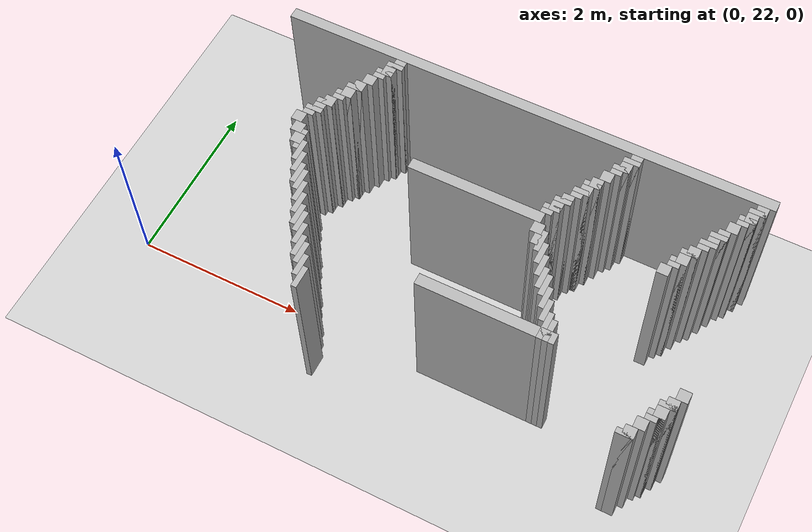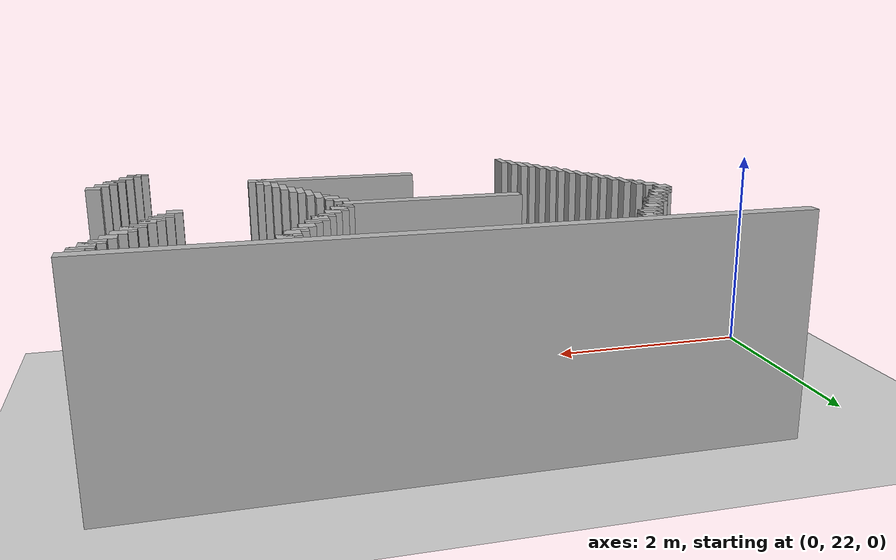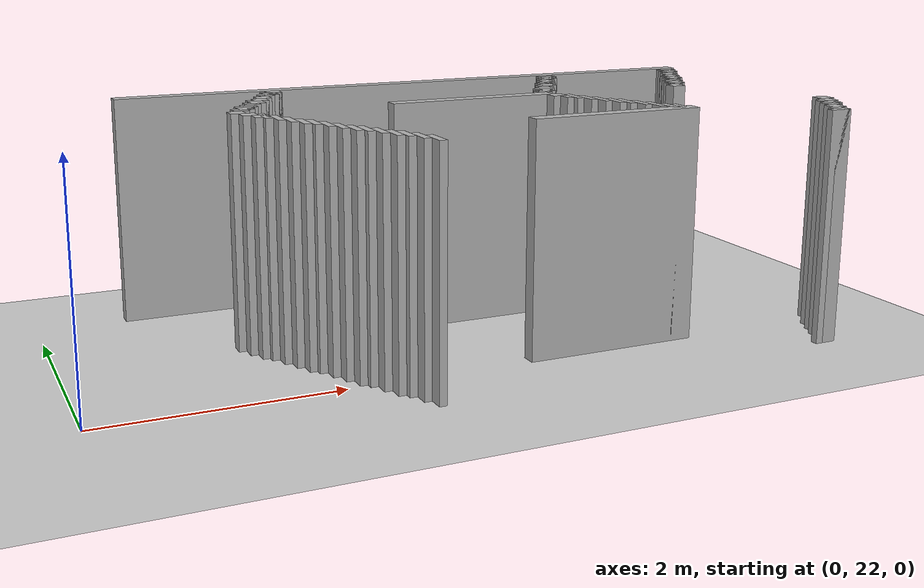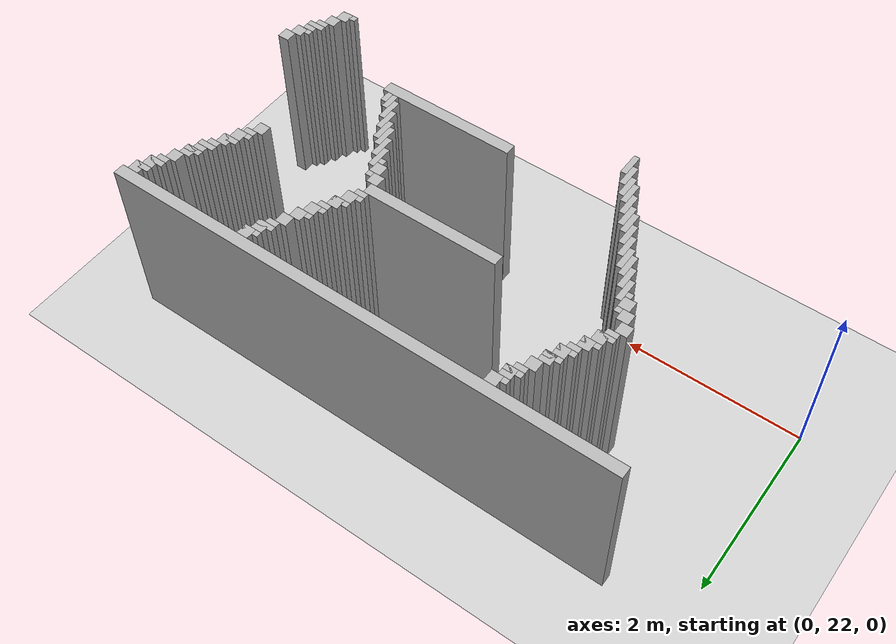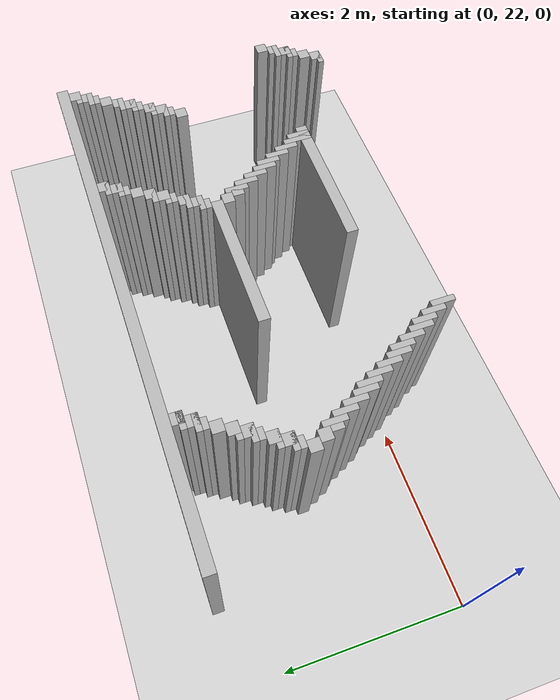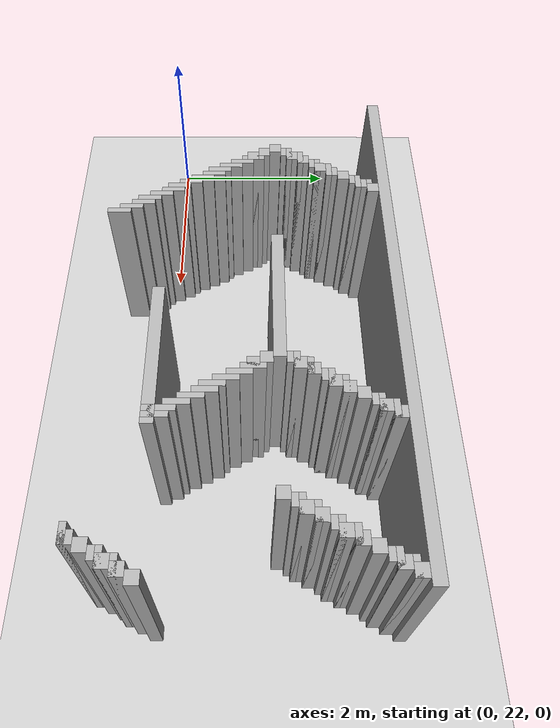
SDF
<sdf version="1.6">
 <world name="slam_world">
  <model name="ground_plane">
   <static>true</static>
   <link name="link">
    <collision name="collision">
     <geometry><plane><normal>0 0 1</normal><size>100 100</size></plane></geometry>
    </collision>
    <visual name="visual">
     <geometry><plane><normal>0 0 1</normal><size>100 100</size></plane></geometry>
     <material>
      <ambient>0.8 0.8 0.8 1</ambient>
      <diffuse>0.8 0.8 0.8 1</diffuse>
      <specular>0.8 0.8 0.8 1</specular>
     </material>
    </visual>
   </link>
  </model>
  <model name="wall_0">
   <static>true</static>
   <pose>3.6382978723404253 24.446808510638295 1.0 0 0 0</pose>
   <link name="link">
    <collision name="collision">
     <geometry><box><size>5.744680851063829 0.1276595744680851 2.0</size></box></geometry>
    </collision>
    <visual name="visual">
     <geometry><box><size>5.744680851063829 0.1276595744680851 2.0</size></box></geometry>
     <material><ambient>0.5 0.5 0.5 1</ambient><diffuse>0.7 0.7 0.7 1</diffuse></material>
    </visual>
   </link>
  </model>
  <model name="wall_3">
   <static>true</static>
   <pose>2.1702127659574466 24.319148936170212 1.0 0 0 0</pose>
   <link name="link">
    <collision name="collision">
     <geometry><box><size>0.1276595744680851 0.1276595744680851 2.0</size></box></geometry>
    </collision>
    <visual name="visual">
     <geometry><box><size>0.1276595744680851 0.1276595744680851 2.0</size></box></geometry>
     <material><ambient>0.5 0.5 0.5 1</ambient><diffuse>0.7 0.7 0.7 1</diffuse></material>
    </visual>
   </link>
  </model>
  <model name="wall_4">
   <static>true</static>
   <pose>4.978723404255319 24.319148936170212 1.0 0 0 0</pose>
   <link name="link">
    <collision name="collision">
     <geometry><box><size>0.1276595744680851 0.1276595744680851 2.0</size></box></geometry>
    </collision>
    <visual name="visual">
     <geometry><box><size>0.1276595744680851 0.1276595744680851 2.0</size></box></geometry>
     <material><ambient>0.5 0.5 0.5 1</ambient><diffuse>0.7 0.7 0.7 1</diffuse></material>
    </visual>
   </link>
  </model>
  <model name="wall_5">
   <static>true</static>
   <pose>6.382978723404255 24.319148936170212 1.0 0 0 0</pose>
   <link name="link">
    <collision name="collision">
     <geometry><box><size>0.1276595744680851 0.1276595744680851 2.0</size></box></geometry>
    </collision>
    <visual name="visual">
     <geometry><box><size>0.1276595744680851 0.1276595744680851 2.0</size></box></geometry>
     <material><ambient>0.5 0.5 0.5 1</ambient><diffuse>0.7 0.7 0.7 1</diffuse></material>
    </visual>
   </link>
  </model>
  <model name="wall_9">
   <static>true</static>
   <pose>2.1382978723404253 24.28723404255319 1.0 0 0 0</pose>
   <link name="link">
    <collision name="collision">
     <geometry><box><size>0.19148936170212766 0.06382978723404255 2.0</size></box></geometry>
    </collision>
    <visual name="visual">
     <geometry><box><size>0.19148936170212766 0.06382978723404255 2.0</size></box></geometry>
     <material><ambient>0.5 0.5 0.5 1</ambient><diffuse>0.7 0.7 0.7 1</diffuse></material>
    </visual>
   </link>
  </model>
  <model name="wall_10">
   <static>true</static>
   <pose>4.946808510638298 24.28723404255319 1.0 0 0 0</pose>
   <link name="link">
    <collision name="collision">
     <geometry><box><size>0.19148936170212766 0.06382978723404255 2.0</size></box></geometry>
    </collision>
    <visual name="visual">
     <geometry><box><size>0.19148936170212766 0.06382978723404255 2.0</size></box></geometry>
     <material><ambient>0.5 0.5 0.5 1</ambient><diffuse>0.7 0.7 0.7 1</diffuse></material>
    </visual>
   </link>
  </model>
  <model name="wall_11">
   <static>true</static>
   <pose>6.3510638297872335 24.28723404255319 1.0 0 0 0</pose>
   <link name="link">
    <collision name="collision">
     <geometry><box><size>0.19148936170212766 0.06382978723404255 2.0</size></box></geometry>
    </collision>
    <visual name="visual">
     <geometry><box><size>0.19148936170212766 0.06382978723404255 2.0</size></box></geometry>
     <material><ambient>0.5 0.5 0.5 1</ambient><diffuse>0.7 0.7 0.7 1</diffuse></material>
    </visual>
   </link>
  </model>
  <model name="wall_15">
   <static>true</static>
   <pose>2.106382978723404 24.191489361702125 1.0 0 0 0</pose>
   <link name="link">
    <collision name="collision">
     <geometry><box><size>0.1276595744680851 0.1276595744680851 2.0</size></box></geometry>
    </collision>
    <visual name="visual">
     <geometry><box><size>0.1276595744680851 0.1276595744680851 2.0</size></box></geometry>
     <material><ambient>0.5 0.5 0.5 1</ambient><diffuse>0.7 0.7 0.7 1</diffuse></material>
    </visual>
   </link>
  </model>
  <model name="wall_16">
   <static>true</static>
   <pose>4.914893617021276 24.191489361702125 1.0 0 0 0</pose>
   <link name="link">
    <collision name="collision">
     <geometry><box><size>0.1276595744680851 0.1276595744680851 2.0</size></box></geometry>
    </collision>
    <visual name="visual">
     <geometry><box><size>0.1276595744680851 0.1276595744680851 2.0</size></box></geometry>
     <material><ambient>0.5 0.5 0.5 1</ambient><diffuse>0.7 0.7 0.7 1</diffuse></material>
    </visual>
   </link>
  </model>
  <model name="wall_17">
   <static>true</static>
   <pose>6.319148936170213 24.191489361702125 1.0 0 0 0</pose>
   <link name="link">
    <collision name="collision">
     <geometry><box><size>0.1276595744680851 0.1276595744680851 2.0</size></box></geometry>
    </collision>
    <visual name="visual">
     <geometry><box><size>0.1276595744680851 0.1276595744680851 2.0</size></box></geometry>
     <material><ambient>0.5 0.5 0.5 1</ambient><diffuse>0.7 0.7 0.7 1</diffuse></material>
    </visual>
   </link>
  </model>
  <model name="wall_21">
   <static>true</static>
   <pose>2.074468085106383 24.159574468085104 1.0 0 0 0</pose>
   <link name="link">
    <collision name="collision">
     <geometry><box><size>0.19148936170212766 0.06382978723404255 2.0</size></box></geometry>
    </collision>
    <visual name="visual">
     <geometry><box><size>0.19148936170212766 0.06382978723404255 2.0</size></box></geometry>
     <material><ambient>0.5 0.5 0.5 1</ambient><diffuse>0.7 0.7 0.7 1</diffuse></material>
    </visual>
   </link>
  </model>
  <model name="wall_22">
   <static>true</static>
   <pose>4.882978723404255 24.159574468085104 1.0 0 0 0</pose>
   <link name="link">
    <collision name="collision">
     <geometry><box><size>0.19148936170212766 0.06382978723404255 2.0</size></box></geometry>
    </collision>
    <visual name="visual">
     <geometry><box><size>0.19148936170212766 0.06382978723404255 2.0</size></box></geometry>
     <material><ambient>0.5 0.5 0.5 1</ambient><diffuse>0.7 0.7 0.7 1</diffuse></material>
    </visual>
   </link>
  </model>
  <model name="wall_23">
   <static>true</static>
   <pose>6.287234042553191 24.159574468085104 1.0 0 0 0</pose>
   <link name="link">
    <collision name="collision">
     <geometry><box><size>0.19148936170212766 0.06382978723404255 2.0</size></box></geometry>
    </collision>
    <visual name="visual">
     <geometry><box><size>0.19148936170212766 0.06382978723404255 2.0</size></box></geometry>
     <material><ambient>0.5 0.5 0.5 1</ambient><diffuse>0.7 0.7 0.7 1</diffuse></material>
    </visual>
   </link>
  </model>
  <model name="wall_27">
   <static>true</static>
   <pose>2.0425531914893615 24.095744680851062 1.0 0 0 0</pose>
   <link name="link">
    <collision name="collision">
     <geometry><box><size>0.1276595744680851 0.06382978723404255 2.0</size></box></geometry>
    </collision>
    <visual name="visual">
     <geometry><box><size>0.1276595744680851 0.06382978723404255 2.0</size></box></geometry>
     <material><ambient>0.5 0.5 0.5 1</ambient><diffuse>0.7 0.7 0.7 1</diffuse></material>
    </visual>
   </link>
  </model>
  <model name="wall_28">
   <static>true</static>
   <pose>4.8510638297872335 24.095744680851062 1.0 0 0 0</pose>
   <link name="link">
    <collision name="collision">
     <geometry><box><size>0.1276595744680851 0.06382978723404255 2.0</size></box></geometry>
    </collision>
    <visual name="visual">
     <geometry><box><size>0.1276595744680851 0.06382978723404255 2.0</size></box></geometry>
     <material><ambient>0.5 0.5 0.5 1</ambient><diffuse>0.7 0.7 0.7 1</diffuse></material>
    </visual>
   </link>
  </model>
  <model name="wall_29">
   <static>true</static>
   <pose>6.25531914893617 24.095744680851062 1.0 0 0 0</pose>
   <link name="link">
    <collision name="collision">
     <geometry><box><size>0.1276595744680851 0.06382978723404255 2.0</size></box></geometry>
    </collision>
    <visual name="visual">
     <geometry><box><size>0.1276595744680851 0.06382978723404255 2.0</size></box></geometry>
     <material><ambient>0.5 0.5 0.5 1</ambient><diffuse>0.7 0.7 0.7 1</diffuse></material>
    </visual>
   </link>
  </model>
  <model name="wall_33">
   <static>true</static>
   <pose>1.978723404255319 23.999999999999996 1.0 0 0 0</pose>
   <link name="link">
    <collision name="collision">
     <geometry><box><size>0.1276595744680851 0.1276595744680851 2.0</size></box></geometry>
    </collision>
    <visual name="visual">
     <geometry><box><size>0.1276595744680851 0.1276595744680851 2.0</size></box></geometry>
     <material><ambient>0.5 0.5 0.5 1</ambient><diffuse>0.7 0.7 0.7 1</diffuse></material>
    </visual>
   </link>
  </model>
  <model name="wall_34">
   <static>true</static>
   <pose>4.787234042553191 23.999999999999996 1.0 0 0 0</pose>
   <link name="link">
    <collision name="collision">
     <geometry><box><size>0.1276595744680851 0.1276595744680851 2.0</size></box></geometry>
    </collision>
    <visual name="visual">
     <geometry><box><size>0.1276595744680851 0.1276595744680851 2.0</size></box></geometry>
     <material><ambient>0.5 0.5 0.5 1</ambient><diffuse>0.7 0.7 0.7 1</diffuse></material>
    </visual>
   </link>
  </model>
  <model name="wall_35">
   <static>true</static>
   <pose>6.191489361702128 23.999999999999996 1.0 0 0 0</pose>
   <link name="link">
    <collision name="collision">
     <geometry><box><size>0.1276595744680851 0.1276595744680851 2.0</size></box></geometry>
    </collision>
    <visual name="visual">
     <geometry><box><size>0.1276595744680851 0.1276595744680851 2.0</size></box></geometry>
     <material><ambient>0.5 0.5 0.5 1</ambient><diffuse>0.7 0.7 0.7 1</diffuse></material>
    </visual>
   </link>
  </model>
  <model name="wall_39">
   <static>true</static>
   <pose>1.9148936170212765 23.872340425531913 1.0 0 0 0</pose>
   <link name="link">
    <collision name="collision">
     <geometry><box><size>0.1276595744680851 0.1276595744680851 2.0</size></box></geometry>
    </collision>
    <visual name="visual">
     <geometry><box><size>0.1276595744680851 0.1276595744680851 2.0</size></box></geometry>
     <material><ambient>0.5 0.5 0.5 1</ambient><diffuse>0.7 0.7 0.7 1</diffuse></material>
    </visual>
   </link>
  </model>
  <model name="wall_40">
   <static>true</static>
   <pose>4.723404255319148 23.872340425531913 1.0 0 0 0</pose>
   <link name="link">
    <collision name="collision">
     <geometry><box><size>0.1276595744680851 0.1276595744680851 2.0</size></box></geometry>
    </collision>
    <visual name="visual">
     <geometry><box><size>0.1276595744680851 0.1276595744680851 2.0</size></box></geometry>
     <material><ambient>0.5 0.5 0.5 1</ambient><diffuse>0.7 0.7 0.7 1</diffuse></material>
    </visual>
   </link>
  </model>
  <model name="wall_41">
   <static>true</static>
   <pose>6.127659574468085 23.872340425531913 1.0 0 0 0</pose>
   <link name="link">
    <collision name="collision">
     <geometry><box><size>0.1276595744680851 0.1276595744680851 2.0</size></box></geometry>
    </collision>
    <visual name="visual">
     <geometry><box><size>0.1276595744680851 0.1276595744680851 2.0</size></box></geometry>
     <material><ambient>0.5 0.5 0.5 1</ambient><diffuse>0.7 0.7 0.7 1</diffuse></material>
    </visual>
   </link>
  </model>
  <model name="wall_45">
   <static>true</static>
   <pose>1.8829787234042552 23.840425531914892 1.0 0 0 0</pose>
   <link name="link">
    <collision name="collision">
     <geometry><box><size>0.19148936170212766 0.06382978723404255 2.0</size></box></geometry>
    </collision>
    <visual name="visual">
     <geometry><box><size>0.19148936170212766 0.06382978723404255 2.0</size></box></geometry>
     <material><ambient>0.5 0.5 0.5 1</ambient><diffuse>0.7 0.7 0.7 1</diffuse></material>
    </visual>
   </link>
  </model>
  <model name="wall_46">
   <static>true</static>
   <pose>4.691489361702128 23.840425531914892 1.0 0 0 0</pose>
   <link name="link">
    <collision name="collision">
     <geometry><box><size>0.19148936170212766 0.06382978723404255 2.0</size></box></geometry>
    </collision>
    <visual name="visual">
     <geometry><box><size>0.19148936170212766 0.06382978723404255 2.0</size></box></geometry>
     <material><ambient>0.5 0.5 0.5 1</ambient><diffuse>0.7 0.7 0.7 1</diffuse></material>
    </visual>
   </link>
  </model>
  <model name="wall_47">
   <static>true</static>
   <pose>6.095744680851063 23.840425531914892 1.0 0 0 0</pose>
   <link name="link">
    <collision name="collision">
     <geometry><box><size>0.19148936170212766 0.06382978723404255 2.0</size></box></geometry>
    </collision>
    <visual name="visual">
     <geometry><box><size>0.19148936170212766 0.06382978723404255 2.0</size></box></geometry>
     <material><ambient>0.5 0.5 0.5 1</ambient><diffuse>0.7 0.7 0.7 1</diffuse></material>
    </visual>
   </link>
  </model>
  <model name="wall_51">
   <static>true</static>
   <pose>1.851063829787234 23.744680851063826 1.0 0 0 0</pose>
   <link name="link">
    <collision name="collision">
     <geometry><box><size>0.1276595744680851 0.1276595744680851 2.0</size></box></geometry>
    </collision>
    <visual name="visual">
     <geometry><box><size>0.1276595744680851 0.1276595744680851 2.0</size></box></geometry>
     <material><ambient>0.5 0.5 0.5 1</ambient><diffuse>0.7 0.7 0.7 1</diffuse></material>
    </visual>
   </link>
  </model>
  <model name="wall_52">
   <static>true</static>
   <pose>4.659574468085106 23.744680851063826 1.0 0 0 0</pose>
   <link name="link">
    <collision name="collision">
     <geometry><box><size>0.1276595744680851 0.1276595744680851 2.0</size></box></geometry>
    </collision>
    <visual name="visual">
     <geometry><box><size>0.1276595744680851 0.1276595744680851 2.0</size></box></geometry>
     <material><ambient>0.5 0.5 0.5 1</ambient><diffuse>0.7 0.7 0.7 1</diffuse></material>
    </visual>
   </link>
  </model>
  <model name="wall_53">
   <static>true</static>
   <pose>6.063829787234042 23.744680851063826 1.0 0 0 0</pose>
   <link name="link">
    <collision name="collision">
     <geometry><box><size>0.1276595744680851 0.1276595744680851 2.0</size></box></geometry>
    </collision>
    <visual name="visual">
     <geometry><box><size>0.1276595744680851 0.1276595744680851 2.0</size></box></geometry>
     <material><ambient>0.5 0.5 0.5 1</ambient><diffuse>0.7 0.7 0.7 1</diffuse></material>
    </visual>
   </link>
  </model>
  <model name="wall_57">
   <static>true</static>
   <pose>1.8191489361702127 23.712765957446805 1.0 0 0 0</pose>
   <link name="link">
    <collision name="collision">
     <geometry><box><size>0.19148936170212766 0.06382978723404255 2.0</size></box></geometry>
    </collision>
    <visual name="visual">
     <geometry><box><size>0.19148936170212766 0.06382978723404255 2.0</size></box></geometry>
     <material><ambient>0.5 0.5 0.5 1</ambient><diffuse>0.7 0.7 0.7 1</diffuse></material>
    </visual>
   </link>
  </model>
  <model name="wall_58">
   <static>true</static>
   <pose>4.627659574468085 23.712765957446805 1.0 0 0 0</pose>
   <link name="link">
    <collision name="collision">
     <geometry><box><size>0.19148936170212766 0.06382978723404255 2.0</size></box></geometry>
    </collision>
    <visual name="visual">
     <geometry><box><size>0.19148936170212766 0.06382978723404255 2.0</size></box></geometry>
     <material><ambient>0.5 0.5 0.5 1</ambient><diffuse>0.7 0.7 0.7 1</diffuse></material>
    </visual>
   </link>
  </model>
  <model name="wall_59">
   <static>true</static>
   <pose>6.031914893617021 23.712765957446805 1.0 0 0 0</pose>
   <link name="link">
    <collision name="collision">
     <geometry><box><size>0.19148936170212766 0.06382978723404255 2.0</size></box></geometry>
    </collision>
    <visual name="visual">
     <geometry><box><size>0.19148936170212766 0.06382978723404255 2.0</size></box></geometry>
     <material><ambient>0.5 0.5 0.5 1</ambient><diffuse>0.7 0.7 0.7 1</diffuse></material>
    </visual>
   </link>
  </model>
  <model name="wall_63">
   <static>true</static>
   <pose>1.7872340425531914 23.648936170212764 1.0 0 0 0</pose>
   <link name="link">
    <collision name="collision">
     <geometry><box><size>0.1276595744680851 0.06382978723404255 2.0</size></box></geometry>
    </collision>
    <visual name="visual">
     <geometry><box><size>0.1276595744680851 0.06382978723404255 2.0</size></box></geometry>
     <material><ambient>0.5 0.5 0.5 1</ambient><diffuse>0.7 0.7 0.7 1</diffuse></material>
    </visual>
   </link>
  </model>
  <model name="wall_64">
   <static>true</static>
   <pose>4.595744680851063 23.648936170212764 1.0 0 0 0</pose>
   <link name="link">
    <collision name="collision">
     <geometry><box><size>0.1276595744680851 0.06382978723404255 2.0</size></box></geometry>
    </collision>
    <visual name="visual">
     <geometry><box><size>0.1276595744680851 0.06382978723404255 2.0</size></box></geometry>
     <material><ambient>0.5 0.5 0.5 1</ambient><diffuse>0.7 0.7 0.7 1</diffuse></material>
    </visual>
   </link>
  </model>
  <model name="wall_65">
   <static>true</static>
   <pose>5.999999999999999 23.648936170212764 1.0 0 0 0</pose>
   <link name="link">
    <collision name="collision">
     <geometry><box><size>0.1276595744680851 0.06382978723404255 2.0</size></box></geometry>
    </collision>
    <visual name="visual">
     <geometry><box><size>0.1276595744680851 0.06382978723404255 2.0</size></box></geometry>
     <material><ambient>0.5 0.5 0.5 1</ambient><diffuse>0.7 0.7 0.7 1</diffuse></material>
    </visual>
   </link>
  </model>
  <model name="wall_69">
   <static>true</static>
   <pose>1.7234042553191489 23.5531914893617 1.0 0 0 0</pose>
   <link name="link">
    <collision name="collision">
     <geometry><box><size>0.1276595744680851 0.1276595744680851 2.0</size></box></geometry>
    </collision>
    <visual name="visual">
     <geometry><box><size>0.1276595744680851 0.1276595744680851 2.0</size></box></geometry>
     <material><ambient>0.5 0.5 0.5 1</ambient><diffuse>0.7 0.7 0.7 1</diffuse></material>
    </visual>
   </link>
  </model>
  <model name="wall_70">
   <static>true</static>
   <pose>4.531914893617021 23.5531914893617 1.0 0 0 0</pose>
   <link name="link">
    <collision name="collision">
     <geometry><box><size>0.1276595744680851 0.1276595744680851 2.0</size></box></geometry>
    </collision>
    <visual name="visual">
     <geometry><box><size>0.1276595744680851 0.1276595744680851 2.0</size></box></geometry>
     <material><ambient>0.5 0.5 0.5 1</ambient><diffuse>0.7 0.7 0.7 1</diffuse></material>
    </visual>
   </link>
  </model>
  <model name="wall_71">
   <static>true</static>
   <pose>5.936170212765957 23.5531914893617 1.0 0 0 0</pose>
   <link name="link">
    <collision name="collision">
     <geometry><box><size>0.1276595744680851 0.1276595744680851 2.0</size></box></geometry>
    </collision>
    <visual name="visual">
     <geometry><box><size>0.1276595744680851 0.1276595744680851 2.0</size></box></geometry>
     <material><ambient>0.5 0.5 0.5 1</ambient><diffuse>0.7 0.7 0.7 1</diffuse></material>
    </visual>
   </link>
  </model>
  <model name="wall_75">
   <static>true</static>
   <pose>1.6914893617021276 23.52127659574468 1.0 0 0 0</pose>
   <link name="link">
    <collision name="collision">
     <geometry><box><size>0.19148936170212766 0.06382978723404255 2.0</size></box></geometry>
    </collision>
    <visual name="visual">
     <geometry><box><size>0.19148936170212766 0.06382978723404255 2.0</size></box></geometry>
     <material><ambient>0.5 0.5 0.5 1</ambient><diffuse>0.7 0.7 0.7 1</diffuse></material>
    </visual>
   </link>
  </model>
  <model name="wall_76">
   <static>true</static>
   <pose>4.5 23.52127659574468 1.0 0 0 0</pose>
   <link name="link">
    <collision name="collision">
     <geometry><box><size>0.19148936170212766 0.06382978723404255 2.0</size></box></geometry>
    </collision>
    <visual name="visual">
     <geometry><box><size>0.19148936170212766 0.06382978723404255 2.0</size></box></geometry>
     <material><ambient>0.5 0.5 0.5 1</ambient><diffuse>0.7 0.7 0.7 1</diffuse></material>
    </visual>
   </link>
  </model>
  <model name="wall_77">
   <static>true</static>
   <pose>5.904255319148936 23.52127659574468 1.0 0 0 0</pose>
   <link name="link">
    <collision name="collision">
     <geometry><box><size>0.19148936170212766 0.06382978723404255 2.0</size></box></geometry>
    </collision>
    <visual name="visual">
     <geometry><box><size>0.19148936170212766 0.06382978723404255 2.0</size></box></geometry>
     <material><ambient>0.5 0.5 0.5 1</ambient><diffuse>0.7 0.7 0.7 1</diffuse></material>
    </visual>
   </link>
  </model>
  <model name="wall_81">
   <static>true</static>
   <pose>1.6595744680851063 23.425531914893615 1.0 0 0 0</pose>
   <link name="link">
    <collision name="collision">
     <geometry><box><size>0.1276595744680851 0.1276595744680851 2.0</size></box></geometry>
    </collision>
    <visual name="visual">
     <geometry><box><size>0.1276595744680851 0.1276595744680851 2.0</size></box></geometry>
     <material><ambient>0.5 0.5 0.5 1</ambient><diffuse>0.7 0.7 0.7 1</diffuse></material>
    </visual>
   </link>
  </model>
  <model name="wall_82">
   <static>true</static>
   <pose>4.468085106382978 23.425531914893615 1.0 0 0 0</pose>
   <link name="link">
    <collision name="collision">
     <geometry><box><size>0.1276595744680851 0.1276595744680851 2.0</size></box></geometry>
    </collision>
    <visual name="visual">
     <geometry><box><size>0.1276595744680851 0.1276595744680851 2.0</size></box></geometry>
     <material><ambient>0.5 0.5 0.5 1</ambient><diffuse>0.7 0.7 0.7 1</diffuse></material>
    </visual>
   </link>
  </model>
  <model name="wall_83">
   <static>true</static>
   <pose>5.872340425531914 23.425531914893615 1.0 0 0 0</pose>
   <link name="link">
    <collision name="collision">
     <geometry><box><size>0.1276595744680851 0.1276595744680851 2.0</size></box></geometry>
    </collision>
    <visual name="visual">
     <geometry><box><size>0.1276595744680851 0.1276595744680851 2.0</size></box></geometry>
     <material><ambient>0.5 0.5 0.5 1</ambient><diffuse>0.7 0.7 0.7 1</diffuse></material>
    </visual>
   </link>
  </model>
  <model name="wall_87">
   <static>true</static>
   <pose>1.627659574468085 23.393617021276594 1.0 0 0 0</pose>
   <link name="link">
    <collision name="collision">
     <geometry><box><size>0.19148936170212766 0.06382978723404255 2.0</size></box></geometry>
    </collision>
    <visual name="visual">
     <geometry><box><size>0.19148936170212766 0.06382978723404255 2.0</size></box></geometry>
     <material><ambient>0.5 0.5 0.5 1</ambient><diffuse>0.7 0.7 0.7 1</diffuse></material>
    </visual>
   </link>
  </model>
  <model name="wall_88">
   <static>true</static>
   <pose>4.4361702127659575 23.393617021276594 1.0 0 0 0</pose>
   <link name="link">
    <collision name="collision">
     <geometry><box><size>0.19148936170212766 0.06382978723404255 2.0</size></box></geometry>
    </collision>
    <visual name="visual">
     <geometry><box><size>0.19148936170212766 0.06382978723404255 2.0</size></box></geometry>
     <material><ambient>0.5 0.5 0.5 1</ambient><diffuse>0.7 0.7 0.7 1</diffuse></material>
    </visual>
   </link>
  </model>
  <model name="wall_89">
   <static>true</static>
   <pose>5.840425531914893 23.393617021276594 1.0 0 0 0</pose>
   <link name="link">
    <collision name="collision">
     <geometry><box><size>0.19148936170212766 0.06382978723404255 2.0</size></box></geometry>
    </collision>
    <visual name="visual">
     <geometry><box><size>0.19148936170212766 0.06382978723404255 2.0</size></box></geometry>
     <material><ambient>0.5 0.5 0.5 1</ambient><diffuse>0.7 0.7 0.7 1</diffuse></material>
    </visual>
   </link>
  </model>
  <model name="wall_93">
   <static>true</static>
   <pose>1.5957446808510638 23.329787234042552 1.0 0 0 0</pose>
   <link name="link">
    <collision name="collision">
     <geometry><box><size>0.1276595744680851 0.06382978723404255 2.0</size></box></geometry>
    </collision>
    <visual name="visual">
     <geometry><box><size>0.1276595744680851 0.06382978723404255 2.0</size></box></geometry>
     <material><ambient>0.5 0.5 0.5 1</ambient><diffuse>0.7 0.7 0.7 1</diffuse></material>
    </visual>
   </link>
  </model>
  <model name="wall_94">
   <static>true</static>
   <pose>4.404255319148936 23.329787234042552 1.0 0 0 0</pose>
   <link name="link">
    <collision name="collision">
     <geometry><box><size>0.1276595744680851 0.06382978723404255 2.0</size></box></geometry>
    </collision>
    <visual name="visual">
     <geometry><box><size>0.1276595744680851 0.06382978723404255 2.0</size></box></geometry>
     <material><ambient>0.5 0.5 0.5 1</ambient><diffuse>0.7 0.7 0.7 1</diffuse></material>
    </visual>
   </link>
  </model>
  <model name="wall_95">
   <static>true</static>
   <pose>5.8085106382978715 23.329787234042552 1.0 0 0 0</pose>
   <link name="link">
    <collision name="collision">
     <geometry><box><size>0.1276595744680851 0.06382978723404255 2.0</size></box></geometry>
    </collision>
    <visual name="visual">
     <geometry><box><size>0.1276595744680851 0.06382978723404255 2.0</size></box></geometry>
     <material><ambient>0.5 0.5 0.5 1</ambient><diffuse>0.7 0.7 0.7 1</diffuse></material>
    </visual>
   </link>
  </model>
  <model name="wall_99">
   <static>true</static>
   <pose>1.5319148936170213 23.234042553191486 1.0 0 0 0</pose>
   <link name="link">
    <collision name="collision">
     <geometry><box><size>0.1276595744680851 0.1276595744680851 2.0</size></box></geometry>
    </collision>
    <visual name="visual">
     <geometry><box><size>0.1276595744680851 0.1276595744680851 2.0</size></box></geometry>
     <material><ambient>0.5 0.5 0.5 1</ambient><diffuse>0.7 0.7 0.7 1</diffuse></material>
    </visual>
   </link>
  </model>
  <model name="wall_100">
   <static>true</static>
   <pose>3.6382978723404253 23.234042553191486 1.0 0 0 0</pose>
   <link name="link">
    <collision name="collision">
     <geometry><box><size>1.5319148936170213 0.1276595744680851 2.0</size></box></geometry>
    </collision>
    <visual name="visual">
     <geometry><box><size>1.5319148936170213 0.1276595744680851 2.0</size></box></geometry>
     <material><ambient>0.5 0.5 0.5 1</ambient><diffuse>0.7 0.7 0.7 1</diffuse></material>
    </visual>
   </link>
  </model>
  <model name="wall_101">
   <static>true</static>
   <pose>5.744680851063829 23.234042553191486 1.0 0 0 0</pose>
   <link name="link">
    <collision name="collision">
     <geometry><box><size>0.1276595744680851 0.1276595744680851 2.0</size></box></geometry>
    </collision>
    <visual name="visual">
     <geometry><box><size>0.1276595744680851 0.1276595744680851 2.0</size></box></geometry>
     <material><ambient>0.5 0.5 0.5 1</ambient><diffuse>0.7 0.7 0.7 1</diffuse></material>
    </visual>
   </link>
  </model>
  <model name="wall_108">
   <static>true</static>
   <pose>1.5957446808510638 23.106382978723403 1.0 0 0 0</pose>
   <link name="link">
    <collision name="collision">
     <geometry><box><size>0.1276595744680851 0.1276595744680851 2.0</size></box></geometry>
    </collision>
    <visual name="visual">
     <geometry><box><size>0.1276595744680851 0.1276595744680851 2.0</size></box></geometry>
     <material><ambient>0.5 0.5 0.5 1</ambient><diffuse>0.7 0.7 0.7 1</diffuse></material>
    </visual>
   </link>
  </model>
  <model name="wall_109">
   <static>true</static>
   <pose>4.404255319148936 23.106382978723403 1.0 0 0 0</pose>
   <link name="link">
    <collision name="collision">
     <geometry><box><size>0.1276595744680851 0.1276595744680851 2.0</size></box></geometry>
    </collision>
    <visual name="visual">
     <geometry><box><size>0.1276595744680851 0.1276595744680851 2.0</size></box></geometry>
     <material><ambient>0.5 0.5 0.5 1</ambient><diffuse>0.7 0.7 0.7 1</diffuse></material>
    </visual>
   </link>
  </model>
  <model name="wall_115">
   <static>true</static>
   <pose>1.6914893617021276 22.978723404255316 1.0 0 0 0</pose>
   <link name="link">
    <collision name="collision">
     <geometry><box><size>0.06382978723404255 0.2553191489361702 2.0</size></box></geometry>
    </collision>
    <visual name="visual">
     <geometry><box><size>0.06382978723404255 0.2553191489361702 2.0</size></box></geometry>
     <material><ambient>0.5 0.5 0.5 1</ambient><diffuse>0.7 0.7 0.7 1</diffuse></material>
    </visual>
   </link>
  </model>
  <model name="wall_116">
   <static>true</static>
   <pose>4.5 22.978723404255316 1.0 0 0 0</pose>
   <link name="link">
    <collision name="collision">
     <geometry><box><size>0.06382978723404255 0.2553191489361702 2.0</size></box></geometry>
    </collision>
    <visual name="visual">
     <geometry><box><size>0.06382978723404255 0.2553191489361702 2.0</size></box></geometry>
     <material><ambient>0.5 0.5 0.5 1</ambient><diffuse>0.7 0.7 0.7 1</diffuse></material>
    </visual>
   </link>
  </model>
  <model name="wall_122">
   <static>true</static>
   <pose>1.6595744680851063 22.978723404255316 1.0 0 0 0</pose>
   <link name="link">
    <collision name="collision">
     <geometry><box><size>0.1276595744680851 0.1276595744680851 2.0</size></box></geometry>
    </collision>
    <visual name="visual">
     <geometry><box><size>0.1276595744680851 0.1276595744680851 2.0</size></box></geometry>
     <material><ambient>0.5 0.5 0.5 1</ambient><diffuse>0.7 0.7 0.7 1</diffuse></material>
    </visual>
   </link>
  </model>
  <model name="wall_123">
   <static>true</static>
   <pose>4.468085106382978 22.978723404255316 1.0 0 0 0</pose>
   <link name="link">
    <collision name="collision">
     <geometry><box><size>0.1276595744680851 0.1276595744680851 2.0</size></box></geometry>
    </collision>
    <visual name="visual">
     <geometry><box><size>0.1276595744680851 0.1276595744680851 2.0</size></box></geometry>
     <material><ambient>0.5 0.5 0.5 1</ambient><diffuse>0.7 0.7 0.7 1</diffuse></material>
    </visual>
   </link>
  </model>
  <model name="wall_130">
   <static>true</static>
   <pose>1.7553191489361701 22.851063829787233 1.0 0 0 0</pose>
   <link name="link">
    <collision name="collision">
     <geometry><box><size>0.06382978723404255 0.2553191489361702 2.0</size></box></geometry>
    </collision>
    <visual name="visual">
     <geometry><box><size>0.06382978723404255 0.2553191489361702 2.0</size></box></geometry>
     <material><ambient>0.5 0.5 0.5 1</ambient><diffuse>0.7 0.7 0.7 1</diffuse></material>
    </visual>
   </link>
  </model>
  <model name="wall_131">
   <static>true</static>
   <pose>4.5638297872340425 22.851063829787233 1.0 0 0 0</pose>
   <link name="link">
    <collision name="collision">
     <geometry><box><size>0.06382978723404255 0.2553191489361702 2.0</size></box></geometry>
    </collision>
    <visual name="visual">
     <geometry><box><size>0.06382978723404255 0.2553191489361702 2.0</size></box></geometry>
     <material><ambient>0.5 0.5 0.5 1</ambient><diffuse>0.7 0.7 0.7 1</diffuse></material>
    </visual>
   </link>
  </model>
  <model name="wall_141">
   <static>true</static>
   <pose>1.8191489361702127 22.723404255319146 1.0 0 0 0</pose>
   <link name="link">
    <collision name="collision">
     <geometry><box><size>0.06382978723404255 0.2553191489361702 2.0</size></box></geometry>
    </collision>
    <visual name="visual">
     <geometry><box><size>0.06382978723404255 0.2553191489361702 2.0</size></box></geometry>
     <material><ambient>0.5 0.5 0.5 1</ambient><diffuse>0.7 0.7 0.7 1</diffuse></material>
    </visual>
   </link>
  </model>
  <model name="wall_142">
   <static>true</static>
   <pose>4.627659574468085 22.723404255319146 1.0 0 0 0</pose>
   <link name="link">
    <collision name="collision">
     <geometry><box><size>0.06382978723404255 0.2553191489361702 2.0</size></box></geometry>
    </collision>
    <visual name="visual">
     <geometry><box><size>0.06382978723404255 0.2553191489361702 2.0</size></box></geometry>
     <material><ambient>0.5 0.5 0.5 1</ambient><diffuse>0.7 0.7 0.7 1</diffuse></material>
    </visual>
   </link>
  </model>
  <model name="wall_149">
   <static>true</static>
   <pose>1.8829787234042552 22.595744680851062 1.0 0 0 0</pose>
   <link name="link">
    <collision name="collision">
     <geometry><box><size>0.06382978723404255 0.2553191489361702 2.0</size></box></geometry>
    </collision>
    <visual name="visual">
     <geometry><box><size>0.06382978723404255 0.2553191489361702 2.0</size></box></geometry>
     <material><ambient>0.5 0.5 0.5 1</ambient><diffuse>0.7 0.7 0.7 1</diffuse></material>
    </visual>
   </link>
  </model>
  <model name="wall_150">
   <static>true</static>
   <pose>4.691489361702128 22.595744680851062 1.0 0 0 0</pose>
   <link name="link">
    <collision name="collision">
     <geometry><box><size>0.06382978723404255 0.2553191489361702 2.0</size></box></geometry>
    </collision>
    <visual name="visual">
     <geometry><box><size>0.06382978723404255 0.2553191489361702 2.0</size></box></geometry>
     <material><ambient>0.5 0.5 0.5 1</ambient><diffuse>0.7 0.7 0.7 1</diffuse></material>
    </visual>
   </link>
  </model>
  <model name="wall_157">
   <static>true</static>
   <pose>1.9468085106382977 22.53191489361702 1.0 0 0 0</pose>
   <link name="link">
    <collision name="collision">
     <geometry><box><size>0.06382978723404255 0.2553191489361702 2.0</size></box></geometry>
    </collision>
    <visual name="visual">
     <geometry><box><size>0.06382978723404255 0.2553191489361702 2.0</size></box></geometry>
     <material><ambient>0.5 0.5 0.5 1</ambient><diffuse>0.7 0.7 0.7 1</diffuse></material>
    </visual>
   </link>
  </model>
  <model name="wall_158">
   <static>true</static>
   <pose>4.75531914893617 22.53191489361702 1.0 0 0 0</pose>
   <link name="link">
    <collision name="collision">
     <geometry><box><size>0.06382978723404255 0.2553191489361702 2.0</size></box></geometry>
    </collision>
    <visual name="visual">
     <geometry><box><size>0.06382978723404255 0.2553191489361702 2.0</size></box></geometry>
     <material><ambient>0.5 0.5 0.5 1</ambient><diffuse>0.7 0.7 0.7 1</diffuse></material>
    </visual>
   </link>
  </model>
  <model name="wall_167">
   <static>true</static>
   <pose>2.0106382978723403 22.404255319148934 1.0 0 0 0</pose>
   <link name="link">
    <collision name="collision">
     <geometry><box><size>0.06382978723404255 0.2553191489361702 2.0</size></box></geometry>
    </collision>
    <visual name="visual">
     <geometry><box><size>0.06382978723404255 0.2553191489361702 2.0</size></box></geometry>
     <material><ambient>0.5 0.5 0.5 1</ambient><diffuse>0.7 0.7 0.7 1</diffuse></material>
    </visual>
   </link>
  </model>
  <model name="wall_168">
   <static>true</static>
   <pose>4.819148936170213 22.404255319148934 1.0 0 0 0</pose>
   <link name="link">
    <collision name="collision">
     <geometry><box><size>0.06382978723404255 0.2553191489361702 2.0</size></box></geometry>
    </collision>
    <visual name="visual">
     <geometry><box><size>0.06382978723404255 0.2553191489361702 2.0</size></box></geometry>
     <material><ambient>0.5 0.5 0.5 1</ambient><diffuse>0.7 0.7 0.7 1</diffuse></material>
    </visual>
   </link>
  </model>
  <model name="wall_177">
   <static>true</static>
   <pose>2.074468085106383 22.27659574468085 1.0 0 0 0</pose>
   <link name="link">
    <collision name="collision">
     <geometry><box><size>0.06382978723404255 0.2553191489361702 2.0</size></box></geometry>
    </collision>
    <visual name="visual">
     <geometry><box><size>0.06382978723404255 0.2553191489361702 2.0</size></box></geometry>
     <material><ambient>0.5 0.5 0.5 1</ambient><diffuse>0.7 0.7 0.7 1</diffuse></material>
    </visual>
   </link>
  </model>
  <model name="wall_178">
   <static>true</static>
   <pose>4.882978723404255 22.27659574468085 1.0 0 0 0</pose>
   <link name="link">
    <collision name="collision">
     <geometry><box><size>0.06382978723404255 0.2553191489361702 2.0</size></box></geometry>
    </collision>
    <visual name="visual">
     <geometry><box><size>0.06382978723404255 0.2553191489361702 2.0</size></box></geometry>
     <material><ambient>0.5 0.5 0.5 1</ambient><diffuse>0.7 0.7 0.7 1</diffuse></material>
    </visual>
   </link>
  </model>
  <model name="wall_187">
   <static>true</static>
   <pose>2.1382978723404253 22.148936170212764 1.0 0 0 0</pose>
   <link name="link">
    <collision name="collision">
     <geometry><box><size>0.06382978723404255 0.2553191489361702 2.0</size></box></geometry>
    </collision>
    <visual name="visual">
     <geometry><box><size>0.06382978723404255 0.2553191489361702 2.0</size></box></geometry>
     <material><ambient>0.5 0.5 0.5 1</ambient><diffuse>0.7 0.7 0.7 1</diffuse></material>
    </visual>
   </link>
  </model>
  <model name="wall_188">
   <static>true</static>
   <pose>4.946808510638298 22.117021276595743 1.0 0 0 0</pose>
   <link name="link">
    <collision name="collision">
     <geometry><box><size>0.06382978723404255 0.3191489361702127 2.0</size></box></geometry>
    </collision>
    <visual name="visual">
     <geometry><box><size>0.06382978723404255 0.3191489361702127 2.0</size></box></geometry>
     <material><ambient>0.5 0.5 0.5 1</ambient><diffuse>0.7 0.7 0.7 1</diffuse></material>
    </visual>
   </link>
  </model>
  <model name="wall_195">
   <static>true</static>
   <pose>2.202127659574468 22.085106382978722 1.0 0 0 0</pose>
   <link name="link">
    <collision name="collision">
     <geometry><box><size>0.06382978723404255 0.2553191489361702 2.0</size></box></geometry>
    </collision>
    <visual name="visual">
     <geometry><box><size>0.06382978723404255 0.2553191489361702 2.0</size></box></geometry>
     <material><ambient>0.5 0.5 0.5 1</ambient><diffuse>0.7 0.7 0.7 1</diffuse></material>
    </visual>
   </link>
  </model>
  <model name="wall_196">
   <static>true</static>
   <pose>5.01063829787234 22.085106382978722 1.0 0 0 0</pose>
   <link name="link">
    <collision name="collision">
     <geometry><box><size>0.06382978723404255 0.2553191489361702 2.0</size></box></geometry>
    </collision>
    <visual name="visual">
     <geometry><box><size>0.06382978723404255 0.2553191489361702 2.0</size></box></geometry>
     <material><ambient>0.5 0.5 0.5 1</ambient><diffuse>0.7 0.7 0.7 1</diffuse></material>
    </visual>
   </link>
  </model>
  <model name="wall_205">
   <static>true</static>
   <pose>2.2659574468085104 21.957446808510635 1.0 0 0 0</pose>
   <link name="link">
    <collision name="collision">
     <geometry><box><size>0.06382978723404255 0.2553191489361702 2.0</size></box></geometry>
    </collision>
    <visual name="visual">
     <geometry><box><size>0.06382978723404255 0.2553191489361702 2.0</size></box></geometry>
     <material><ambient>0.5 0.5 0.5 1</ambient><diffuse>0.7 0.7 0.7 1</diffuse></material>
    </visual>
   </link>
  </model>
  <model name="wall_206">
   <static>true</static>
   <pose>4.340425531914893 22.02127659574468 1.0 0 0 0</pose>
   <link name="link">
    <collision name="collision">
     <geometry><box><size>1.5319148936170213 0.1276595744680851 2.0</size></box></geometry>
    </collision>
    <visual name="visual">
     <geometry><box><size>1.5319148936170213 0.1276595744680851 2.0</size></box></geometry>
     <material><ambient>0.5 0.5 0.5 1</ambient><diffuse>0.7 0.7 0.7 1</diffuse></material>
    </visual>
   </link>
  </model>
  <model name="wall_207">
   <static>true</static>
   <pose>6.446808510638298 22.02127659574468 1.0 0 0 0</pose>
   <link name="link">
    <collision name="collision">
     <geometry><box><size>0.1276595744680851 0.1276595744680851 2.0</size></box></geometry>
    </collision>
    <visual name="visual">
     <geometry><box><size>0.1276595744680851 0.1276595744680851 2.0</size></box></geometry>
     <material><ambient>0.5 0.5 0.5 1</ambient><diffuse>0.7 0.7 0.7 1</diffuse></material>
    </visual>
   </link>
  </model>
  <model name="wall_213">
   <static>true</static>
   <pose>2.329787234042553 21.829787234042552 1.0 0 0 0</pose>
   <link name="link">
    <collision name="collision">
     <geometry><box><size>0.06382978723404255 0.2553191489361702 2.0</size></box></geometry>
    </collision>
    <visual name="visual">
     <geometry><box><size>0.06382978723404255 0.2553191489361702 2.0</size></box></geometry>
     <material><ambient>0.5 0.5 0.5 1</ambient><diffuse>0.7 0.7 0.7 1</diffuse></material>
    </visual>
   </link>
  </model>
  <model name="wall_214">
   <static>true</static>
   <pose>6.382978723404255 21.893617021276594 1.0 0 0 0</pose>
   <link name="link">
    <collision name="collision">
     <geometry><box><size>0.1276595744680851 0.1276595744680851 2.0</size></box></geometry>
    </collision>
    <visual name="visual">
     <geometry><box><size>0.1276595744680851 0.1276595744680851 2.0</size></box></geometry>
     <material><ambient>0.5 0.5 0.5 1</ambient><diffuse>0.7 0.7 0.7 1</diffuse></material>
    </visual>
   </link>
  </model>
  <model name="wall_219">
   <static>true</static>
   <pose>2.3936170212765955 21.76595744680851 1.0 0 0 0</pose>
   <link name="link">
    <collision name="collision">
     <geometry><box><size>0.06382978723404255 0.2553191489361702 2.0</size></box></geometry>
    </collision>
    <visual name="visual">
     <geometry><box><size>0.06382978723404255 0.2553191489361702 2.0</size></box></geometry>
     <material><ambient>0.5 0.5 0.5 1</ambient><diffuse>0.7 0.7 0.7 1</diffuse></material>
    </visual>
   </link>
  </model>
  <model name="wall_220">
   <static>true</static>
   <pose>6.3510638297872335 21.861702127659573 1.0 0 0 0</pose>
   <link name="link">
    <collision name="collision">
     <geometry><box><size>0.19148936170212766 0.06382978723404255 2.0</size></box></geometry>
    </collision>
    <visual name="visual">
     <geometry><box><size>0.19148936170212766 0.06382978723404255 2.0</size></box></geometry>
     <material><ambient>0.5 0.5 0.5 1</ambient><diffuse>0.7 0.7 0.7 1</diffuse></material>
    </visual>
   </link>
  </model>
  <model name="wall_227">
   <static>true</static>
   <pose>6.319148936170213 21.76595744680851 1.0 0 0 0</pose>
   <link name="link">
    <collision name="collision">
     <geometry><box><size>0.1276595744680851 0.1276595744680851 2.0</size></box></geometry>
    </collision>
    <visual name="visual">
     <geometry><box><size>0.1276595744680851 0.1276595744680851 2.0</size></box></geometry>
     <material><ambient>0.5 0.5 0.5 1</ambient><diffuse>0.7 0.7 0.7 1</diffuse></material>
    </visual>
   </link>
  </model>
  <model name="wall_234">
   <static>true</static>
   <pose>2.457446808510638 21.638297872340424 1.0 0 0 0</pose>
   <link name="link">
    <collision name="collision">
     <geometry><box><size>0.06382978723404255 0.2553191489361702 2.0</size></box></geometry>
    </collision>
    <visual name="visual">
     <geometry><box><size>0.06382978723404255 0.2553191489361702 2.0</size></box></geometry>
     <material><ambient>0.5 0.5 0.5 1</ambient><diffuse>0.7 0.7 0.7 1</diffuse></material>
    </visual>
   </link>
  </model>
  <model name="wall_235">
   <static>true</static>
   <pose>6.287234042553191 21.734042553191486 1.0 0 0 0</pose>
   <link name="link">
    <collision name="collision">
     <geometry><box><size>0.19148936170212766 0.06382978723404255 2.0</size></box></geometry>
    </collision>
    <visual name="visual">
     <geometry><box><size>0.19148936170212766 0.06382978723404255 2.0</size></box></geometry>
     <material><ambient>0.5 0.5 0.5 1</ambient><diffuse>0.7 0.7 0.7 1</diffuse></material>
    </visual>
   </link>
  </model>
  <model name="wall_242">
   <static>true</static>
   <pose>6.25531914893617 21.670212765957444 1.0 0 0 0</pose>
   <link name="link">
    <collision name="collision">
     <geometry><box><size>0.1276595744680851 0.06382978723404255 2.0</size></box></geometry>
    </collision>
    <visual name="visual">
     <geometry><box><size>0.1276595744680851 0.06382978723404255 2.0</size></box></geometry>
     <material><ambient>0.5 0.5 0.5 1</ambient><diffuse>0.7 0.7 0.7 1</diffuse></material>
    </visual>
   </link>
  </model>
  <model name="wall_247">
   <static>true</static>
   <pose>2.5212765957446805 21.51063829787234 1.0 0 0 0</pose>
   <link name="link">
    <collision name="collision">
     <geometry><box><size>0.06382978723404255 0.2553191489361702 2.0</size></box></geometry>
    </collision>
    <visual name="visual">
     <geometry><box><size>0.06382978723404255 0.2553191489361702 2.0</size></box></geometry>
     <material><ambient>0.5 0.5 0.5 1</ambient><diffuse>0.7 0.7 0.7 1</diffuse></material>
    </visual>
   </link>
  </model>
  <model name="wall_248">
   <static>true</static>
   <pose>6.191489361702128 21.574468085106382 1.0 0 0 0</pose>
   <link name="link">
    <collision name="collision">
     <geometry><box><size>0.1276595744680851 0.1276595744680851 2.0</size></box></geometry>
    </collision>
    <visual name="visual">
     <geometry><box><size>0.1276595744680851 0.1276595744680851 2.0</size></box></geometry>
     <material><ambient>0.5 0.5 0.5 1</ambient><diffuse>0.7 0.7 0.7 1</diffuse></material>
    </visual>
   </link>
  </model>
  <model name="wall_256">
   <static>true</static>
   <pose>6.127659574468085 21.446808510638295 1.0 0 0 0</pose>
   <link name="link">
    <collision name="collision">
     <geometry><box><size>0.1276595744680851 0.1276595744680851 2.0</size></box></geometry>
    </collision>
    <visual name="visual">
     <geometry><box><size>0.1276595744680851 0.1276595744680851 2.0</size></box></geometry>
     <material><ambient>0.5 0.5 0.5 1</ambient><diffuse>0.7 0.7 0.7 1</diffuse></material>
    </visual>
   </link>
  </model>
  <model name="wall_264">
   <static>true</static>
   <pose>6.095744680851063 21.414893617021274 1.0 0 0 0</pose>
   <link name="link">
    <collision name="collision">
     <geometry><box><size>0.19148936170212766 0.06382978723404255 2.0</size></box></geometry>
    </collision>
    <visual name="visual">
     <geometry><box><size>0.19148936170212766 0.06382978723404255 2.0</size></box></geometry>
     <material><ambient>0.5 0.5 0.5 1</ambient><diffuse>0.7 0.7 0.7 1</diffuse></material>
    </visual>
   </link>
  </model>
 </world>
</sdf>
